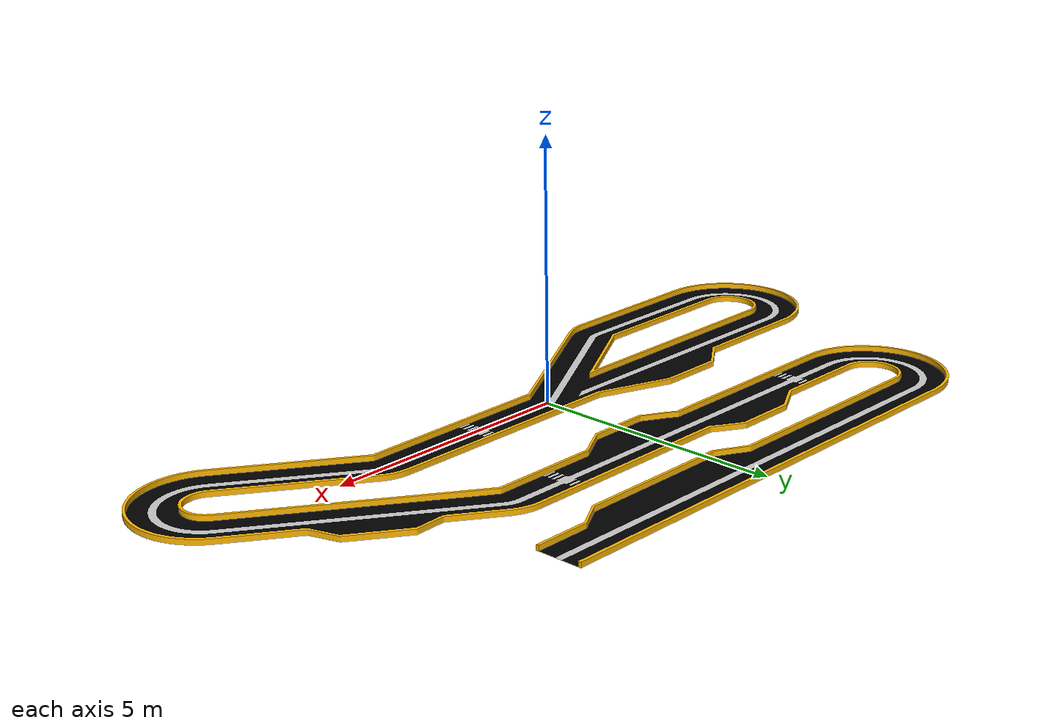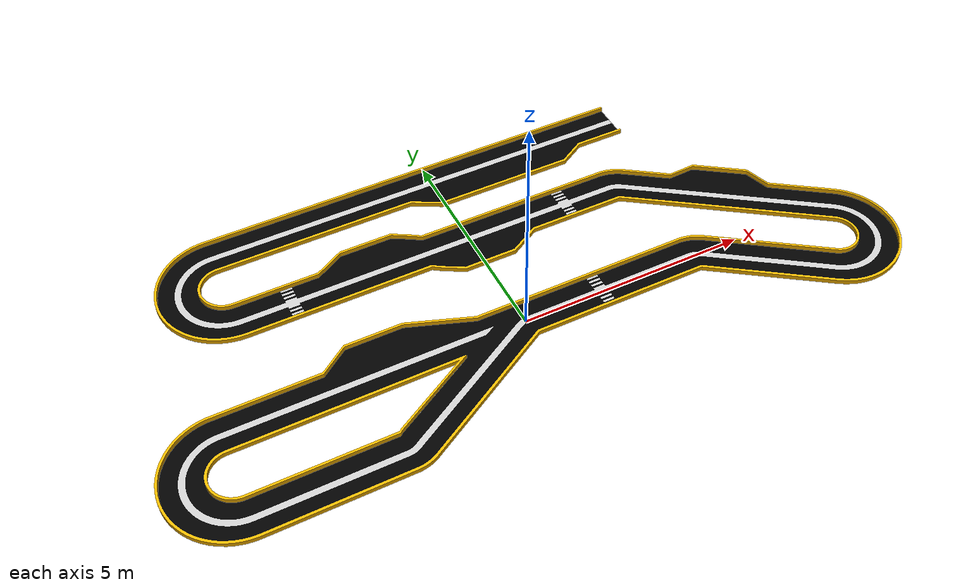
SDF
<?xml version="1.0"?>
<sdf version="1.7">
  <model name="TtfestRoad">
    <static>true</static>
    <link name="link">
      <pose>0 0 0 0 0 0</pose>

      <collision name="collision">
        <geometry>
          <mesh>
            <uri>model://ttfestroad/meshes/road.dae</uri>
            <scale>1 1 1</scale>
          </mesh>
        </geometry>
      </collision>

      <visual name="visual">
        <geometry>
          <mesh>
            <uri>model://ttfestroad/meshes/road.dae</uri>
            <scale>1 1 1</scale>
          </mesh>
        </geometry>
      </visual>

    </link>
  </model>
</sdf>
